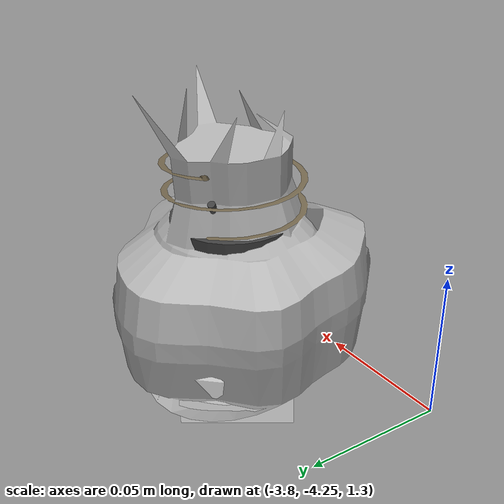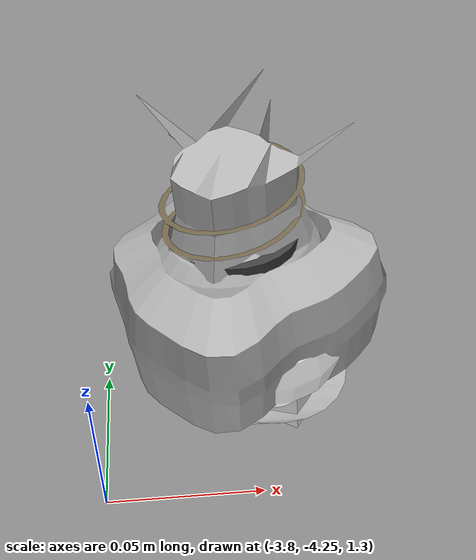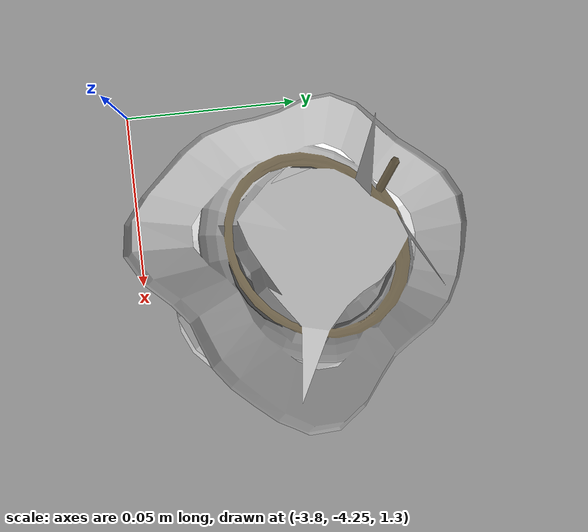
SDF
<sdf version="1.11">
 <world name="peach_orchard">
  <model name="ground">
   <static>true</static>
   <link name="link">
    <visual name="soil">
     <geometry><plane><normal>0 0 1</normal><size>32 22</size></plane></geometry>
     <material>
      <ambient>1 1 1 1</ambient>
      <diffuse>1 1 1 1</diffuse>
      <specular>0.1 0.1 0.1 1</specular>
      <pbr>
       <metal>
        <albedo_map>textures/soil_albedo.png</albedo_map>
        <normal_map type="tangent">textures/soil_normal.png</normal_map>
        <roughness>0.95</roughness>
        <metalness>0</metalness>
       </metal>
      </pbr>
     </material>
    </visual>
    <collision name="c_soil">
     <geometry><plane><normal>0 0 1</normal><size>32 22</size></plane></geometry>
    </collision>
   </link>
  </model>
  <model name="peach_tree_r1_t1_00">
   <pose>-3.7525 -4.20402 1.30796 0 0.0793811 2.18777</pose>
   <static>true</static>
   <link name="bag">
    <visual name="bag_mesh">
     <pose>0 0 0.0417174 0 0 0</pose>
     <geometry>
      <mesh><uri>model://peach_sim/meshes/bagged_peach.glb</uri><scale>1.02034 1.18998 0.948123</scale></mesh>
     </geometry>
    </visual>
    <visual name="body">
     <pose>0 0 0.0237174 0 0 0</pose>
     <geometry><ellipsoid><radii>0.0382628 0.0309395 0.0256148</radii></ellipsoid></geometry>
     <material>
      <ambient>1 1 1 1</ambient>
      <diffuse>1 1 1 1</diffuse>
      <specular>0.1 0.1 0.1 1</specular>
      <pbr>
       <metal>
        <albedo_map>textures/paper_bag_albedo.png</albedo_map>
        <normal_map type="tangent">textures/paper_bag_normal.png</normal_map>
        <roughness>0.72</roughness>
        <metalness>0</metalness>
       </metal>
      </pbr>
     </material>
    </visual>
    <visual name="bottom_fold">
     <pose>0 0 0.012 0 0 0.35</pose>
     <geometry><box><size>0.0593073 0.0355805 0.022</size></box></geometry>
     <material>
      <ambient>1 1 1 1</ambient>
      <diffuse>1 1 1 1</diffuse>
      <specular>0.1 0.1 0.1 1</specular>
      <pbr>
       <metal>
        <albedo_map>textures/paper_bag_albedo.png</albedo_map>
        <normal_map type="tangent">textures/paper_bag_normal.png</normal_map>
        <roughness>0.8</roughness>
        <metalness>0</metalness>
       </metal>
      </pbr>
     </material>
    </visual>
    <visual name="fruit">
     <pose>0 0 0.0196582 0 0 0</pose>
     <geometry><sphere><radius>0.0266845</radius></sphere></geometry>
     <material>
      <ambient>1 1 1 1</ambient>
      <diffuse>1 1 1 1</diffuse>
      <specular>0.1 0.1 0.1 1</specular>
      <pbr>
       <metal>
        <albedo_map>textures/fruit_skin_albedo.png</albedo_map>
        <normal_map type="tangent">textures/fruit_skin_normal.png</normal_map>
        <roughness>0.55</roughness>
        <metalness>0</metalness>
       </metal>
      </pbr>
     </material>
    </visual>
    <visual name="neck">
     <pose>0 0 0.0564348 0 0 0</pose>
     <geometry><cylinder><radius>0.013</radius><length>0.018</length></cylinder></geometry>
     <material>
      <ambient>1 1 1 1</ambient>
      <diffuse>1 1 1 1</diffuse>
      <specular>0.1 0.1 0.1 1</specular>
      <pbr>
       <metal>
        <albedo_map>textures/paper_bag_albedo.png</albedo_map>
        <normal_map type="tangent">textures/paper_bag_normal.png</normal_map>
        <roughness>0.75</roughness>
        <metalness>0</metalness>
       </metal>
      </pbr>
     </material>
    </visual>
    <visual name="gather">
     <pose>0 0 0.0374348 0 0 0</pose>
     <geometry><cylinder><radius>0.019</radius><length>0.02</length></cylinder></geometry>
     <material>
      <ambient>1 1 1 1</ambient>
      <diffuse>1 1 1 1</diffuse>
      <specular>0.1 0.1 0.1 1</specular>
      <pbr>
       <metal>
        <albedo_map>textures/paper_bag_albedo.png</albedo_map>
        <normal_map type="tangent">textures/paper_bag_normal.png</normal_map>
        <roughness>0.8</roughness>
        <metalness>0</metalness>
       </metal>
      </pbr>
     </material>
    </visual>
    <visual name="inner_paper">
     <pose>0 0 0.0614348 0 0 0</pose>
     <geometry><cylinder><radius>0.01</radius><length>0.008</length></cylinder></geometry>
     <material>
      <ambient>0.180392 0.14902 0.133333 1</ambient>
      <diffuse>0.180392 0.14902 0.133333 1</diffuse>
      <specular>0.1 0.1 0.1 1</specular>
     </material>
    </visual>
    <visual name="wire_0">
     <pose>0 0 0.0514348 0 0 0</pose>
     <geometry><cylinder><radius>0.0205</radius><length>0.0035</length></cylinder></geometry>
     <material>
      <ambient>0.25 0.25 0.25 1</ambient>
      <diffuse>0.25 0.25 0.25 1</diffuse>
      <specular>0.1 0.1 0.1 1</specular>
     </material>
    </visual>
    <visual name="wire_1">
     <pose>0 0 0.0584348 0 0 0</pose>
     <geometry><cylinder><radius>0.0205</radius><length>0.0035</length></cylinder></geometry>
     <material>
      <ambient>0.25 0.25 0.25 1</ambient>
      <diffuse>0.25 0.25 0.25 1</diffuse>
      <specular>0.1 0.1 0.1 1</specular>
     </material>
    </visual>
    <visual name="wire_tail">
     <pose>0.01 0 0.0594348 0 0.521618 0</pose>
     <geometry><cylinder><radius>0.0012</radius><length>0.026</length></cylinder></geometry>
     <material>
      <ambient>0.25 0.25 0.25 1</ambient>
      <diffuse>0.25 0.25 0.25 1</diffuse>
      <specular>0.1 0.1 0.1 1</specular>
     </material>
    </visual>
    <collision name="c_body">
     <pose>0 0 0.0237174 0 0 0</pose>
     <geometry><cylinder><radius>0.0382628</radius><length>0.0474348</length></cylinder></geometry>
    </collision>
   </link>
  </model>
 </world>
</sdf>
